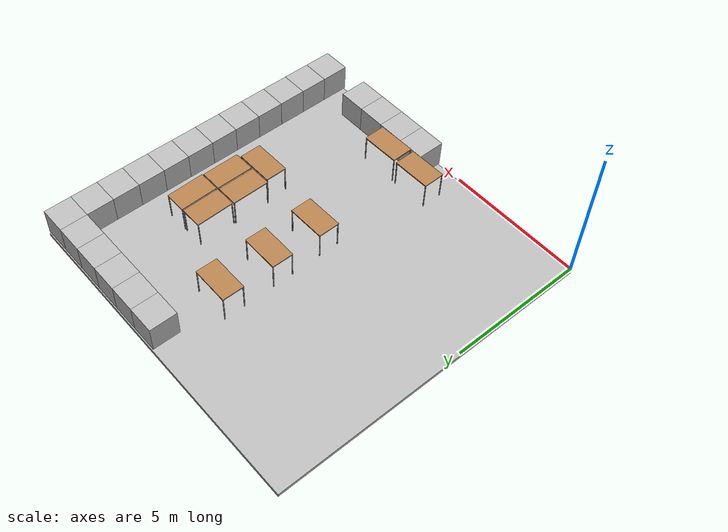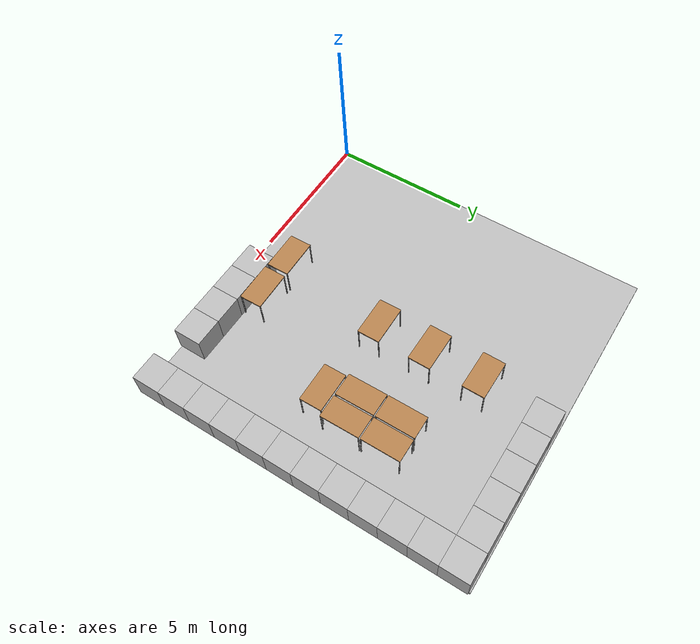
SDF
<sdf version="1.6">
 <world name="default">
  <model name="floor">
   <pose>5.93404 6.04423 -0.0625 0 -0 0</pose>
   <static>1</static>
   <link name="link">
    <collision name="collision"><geometry><box><size>12 12 0.125</size></box></geometry></collision>
    <visual name="visual"><geometry><box><size>12 12 0.125</size></box></geometry></visual>
   </link>
  </model>
  <model name="box_6_0">
   <pose>6.5 0.5 0.5 0 -0 0</pose>
   <static>1</static>
   <link name="link">
    <collision name="collision"><geometry><box><size>1 1 1</size></box></geometry></collision>
    <visual name="visual"><geometry><box><size>1 1 1</size></box></geometry></visual>
   </link>
  </model>
  <model name="box_6_11">
   <pose>6.5 11.5 0.5 0 -0 0</pose>
   <static>1</static>
   <link name="link">
    <collision name="collision"><geometry><box><size>1 1 1</size></box></geometry></collision>
    <visual name="visual"><geometry><box><size>1 1 1</size></box></geometry></visual>
   </link>
  </model>
  <model name="box_7_0">
   <pose>7.5 0.5 0.5 0 -0 0</pose>
   <static>1</static>
   <link name="link">
    <collision name="collision"><geometry><box><size>1 1 1</size></box></geometry></collision>
    <visual name="visual"><geometry><box><size>1 1 1</size></box></geometry></visual>
   </link>
  </model>
  <model name="box_7_11">
   <pose>7.5 11.5 0.5 0 -0 0</pose>
   <static>1</static>
   <link name="link">
    <collision name="collision"><geometry><box><size>1 1 1</size></box></geometry></collision>
    <visual name="visual"><geometry><box><size>1 1 1</size></box></geometry></visual>
   </link>
  </model>
  <model name="box_8_0">
   <pose>8.5 0.5 0.5 0 -0 0</pose>
   <static>1</static>
   <link name="link">
    <collision name="collision"><geometry><box><size>1 1 1</size></box></geometry></collision>
    <visual name="visual"><geometry><box><size>1 1 1</size></box></geometry></visual>
   </link>
  </model>
  <model name="box_8_11">
   <pose>8.5 11.5 0.5 0 -0 0</pose>
   <static>1</static>
   <link name="link">
    <collision name="collision"><geometry><box><size>1 1 1</size></box></geometry></collision>
    <visual name="visual"><geometry><box><size>1 1 1</size></box></geometry></visual>
   </link>
  </model>
  <model name="box_9_0">
   <pose>9.5 0.5 0.5 0 -0 0</pose>
   <static>1</static>
   <link name="link">
    <collision name="collision"><geometry><box><size>1 1 1</size></box></geometry></collision>
    <visual name="visual"><geometry><box><size>1 1 1</size></box></geometry></visual>
   </link>
  </model>
  <model name="box_9_11">
   <pose>9.5 11.5 0.5 0 -0 0</pose>
   <static>1</static>
   <link name="link">
    <collision name="collision"><geometry><box><size>1 1 1</size></box></geometry></collision>
    <visual name="visual"><geometry><box><size>1 1 1</size></box></geometry></visual>
   </link>
  </model>
  <model name="box_10_11">
   <pose>10.5 11.5 0.5 0 -0 0</pose>
   <static>1</static>
   <link name="link">
    <collision name="collision"><geometry><box><size>1 1 1</size></box></geometry></collision>
    <visual name="visual"><geometry><box><size>1 1 1</size></box></geometry></visual>
   </link>
  </model>
  <model name="box_11_0">
   <pose>11.5 0.5 0.5 0 -0 0</pose>
   <static>1</static>
   <link name="link">
    <collision name="collision"><geometry><box><size>1 1 1</size></box></geometry></collision>
    <visual name="visual"><geometry><box><size>1 1 1</size></box></geometry></visual>
   </link>
  </model>
  <model name="box_11_1">
   <pose>11.5 1.5 0.5 0 -0 0</pose>
   <static>1</static>
   <link name="link">
    <collision name="collision"><geometry><box><size>1 1 1</size></box></geometry></collision>
    <visual name="visual"><geometry><box><size>1 1 1</size></box></geometry></visual>
   </link>
  </model>
  <model name="box_11_2">
   <pose>11.5 2.5 0.5 0 -0 0</pose>
   <static>1</static>
   <link name="link">
    <collision name="collision"><geometry><box><size>1 1 1</size></box></geometry></collision>
    <visual name="visual"><geometry><box><size>1 1 1</size></box></geometry></visual>
   </link>
  </model>
  <model name="box_11_3">
   <pose>11.5 3.5 0.5 0 -0 0</pose>
   <static>1</static>
   <link name="link">
    <collision name="collision"><geometry><box><size>1 1 1</size></box></geometry></collision>
    <visual name="visual"><geometry><box><size>1 1 1</size></box></geometry></visual>
   </link>
  </model>
  <model name="box_11_4">
   <pose>11.5 4.5 0.5 0 -0 0</pose>
   <static>1</static>
   <link name="link">
    <collision name="collision"><geometry><box><size>1 1 1</size></box></geometry></collision>
    <visual name="visual"><geometry><box><size>1 1 1</size></box></geometry></visual>
   </link>
  </model>
  <model name="box_11_5">
   <pose>11.5 5.5 0.5 0 -0 0</pose>
   <static>1</static>
   <link name="link">
    <collision name="collision"><geometry><box><size>1 1 1</size></box></geometry></collision>
    <visual name="visual"><geometry><box><size>1 1 1</size></box></geometry></visual>
   </link>
  </model>
  <model name="box_11_6">
   <pose>11.5 6.5 0.5 0 -0 0</pose>
   <static>1</static>
   <link name="link">
    <collision name="collision"><geometry><box><size>1 1 1</size></box></geometry></collision>
    <visual name="visual"><geometry><box><size>1 1 1</size></box></geometry></visual>
   </link>
  </model>
  <model name="box_11_7">
   <pose>11.5 7.5 0.5 0 -0 0</pose>
   <static>1</static>
   <link name="link">
    <collision name="collision"><geometry><box><size>1 1 1</size></box></geometry></collision>
    <visual name="visual"><geometry><box><size>1 1 1</size></box></geometry></visual>
   </link>
  </model>
  <model name="box_11_8">
   <pose>11.5 8.5 0.5 0 -0 0</pose>
   <static>1</static>
   <link name="link">
    <collision name="collision"><geometry><box><size>1 1 1</size></box></geometry></collision>
    <visual name="visual"><geometry><box><size>1 1 1</size></box></geometry></visual>
   </link>
  </model>
  <model name="box_11_9">
   <pose>11.5 9.5 0.5 0 -0 0</pose>
   <static>1</static>
   <link name="link">
    <collision name="collision"><geometry><box><size>1 1 1</size></box></geometry></collision>
    <visual name="visual"><geometry><box><size>1 1 1</size></box></geometry></visual>
   </link>
  </model>
  <model name="box_11_10">
   <pose>11.5 10.5 0.5 0 -0 0</pose>
   <static>1</static>
   <link name="link">
    <collision name="collision"><geometry><box><size>1 1 1</size></box></geometry></collision>
    <visual name="visual"><geometry><box><size>1 1 1</size></box></geometry></visual>
   </link>
  </model>
  <model name="box_11_11">
   <pose>11.5 11.5 0.5 0 -0 0</pose>
   <static>1</static>
   <link name="link">
    <collision name="collision"><geometry><box><size>1 1 1</size></box></geometry></collision>
    <visual name="visual"><geometry><box><size>1 1 1</size></box></geometry></visual>
   </link>
  </model>
  <model name="table">
   <static>0</static>
   <link name="link">
    <collision name="surface">
     <pose>0 0 1 0 -0 0</pose>
     <geometry><box><size>1.5 0.8 0.03</size></box></geometry>
     <surface><friction><ode><mu>0.6</mu><mu2>0.6</mu2></ode></friction></surface>
    </collision>
    <visual name="visual1">
     <pose>0 0 1 0 -0 0</pose>
     <geometry><box><size>1.4 0.8 0.04</size></box></geometry>
     <material>
      <script><uri>file://media/materials/scripts/gazebo.material</uri><name>Gazebo/Wood</name></script>
     </material>
    </visual>
    <collision name="front_left_leg">
     <pose>0.68 0.38 0.5 0 -0 0</pose>
     <geometry><cylinder><radius>0.02</radius><length>1</length></cylinder></geometry>
    </collision>
    <visual name="front_left_leg">
     <pose>0.68 0.38 0.5 0 -0 0</pose>
     <geometry><cylinder><radius>0.02</radius><length>1</length></cylinder></geometry>
     <material>
      <script><uri>file://media/materials/scripts/gazebo.material</uri><name>Gazebo/Grey</name></script>
     </material>
    </visual>
    <collision name="front_right_leg">
     <pose>0.68 -0.38 0.5 0 -0 0</pose>
     <geometry><cylinder><radius>0.02</radius><length>1</length></cylinder></geometry>
    </collision>
    <visual name="front_right_leg">
     <pose>0.68 -0.38 0.5 0 -0 0</pose>
     <geometry><cylinder><radius>0.02</radius><length>1</length></cylinder></geometry>
     <material>
      <script><uri>file://media/materials/scripts/gazebo.material</uri><name>Gazebo/Grey</name></script>
     </material>
    </visual>
    <collision name="back_right_leg">
     <pose>-0.68 -0.38 0.5 0 -0 0</pose>
     <geometry><cylinder><radius>0.02</radius><length>1</length></cylinder></geometry>
    </collision>
    <visual name="back_right_leg">
     <pose>-0.68 -0.38 0.5 0 -0 0</pose>
     <geometry><cylinder><radius>0.02</radius><length>1</length></cylinder></geometry>
     <material>
      <script><uri>file://media/materials/scripts/gazebo.material</uri><name>Gazebo/Grey</name></script>
     </material>
    </visual>
    <collision name="back_left_leg">
     <pose>-0.68 0.38 0.5 0 -0 0</pose>
     <geometry><cylinder><radius>0.02</radius><length>1</length></cylinder></geometry>
    </collision>
    <visual name="back_left_leg">
     <pose>-0.68 0.38 0.5 0 -0 0</pose>
     <geometry><cylinder><radius>0.02</radius><length>1</length></cylinder></geometry>
     <material>
      <script><uri>file://media/materials/scripts/gazebo.material</uri><name>Gazebo/Grey</name></script>
     </material>
    </visual>
    <inertial>
     <inertia><ixx>1</ixx><ixy>0</ixy><ixz>0</ixz><iyy>1</iyy><iyz>0</iyz><izz>1</izz></inertia>
     <mass>1</mass>
    </inertial>
   </link>
   <pose>9.17863 5.23894 -3e-06 1e-06 -0 0.010782</pose>
  </model>
  <model name="table_0">
   <static>0</static>
   <link name="link">
    <collision name="surface">
     <pose>0 0 1 0 -0 0</pose>
     <geometry><box><size>1.5 0.8 0.03</size></box></geometry>
     <surface><friction><ode><mu>0.6</mu><mu2>0.6</mu2></ode></friction></surface>
    </collision>
    <visual name="visual1">
     <pose>0 0 1 0 -0 0</pose>
     <geometry><box><size>1.4 0.8 0.04</size></box></geometry>
     <material>
      <script><uri>file://media/materials/scripts/gazebo.material</uri><name>Gazebo/Wood</name></script>
     </material>
    </visual>
    <collision name="front_left_leg">
     <pose>0.68 0.38 0.5 0 -0 0</pose>
     <geometry><cylinder><radius>0.02</radius><length>1</length></cylinder></geometry>
    </collision>
    <visual name="front_left_leg">
     <pose>0.68 0.38 0.5 0 -0 0</pose>
     <geometry><cylinder><radius>0.02</radius><length>1</length></cylinder></geometry>
     <material>
      <script><uri>file://media/materials/scripts/gazebo.material</uri><name>Gazebo/Grey</name></script>
     </material>
    </visual>
    <collision name="front_right_leg">
     <pose>0.68 -0.38 0.5 0 -0 0</pose>
     <geometry><cylinder><radius>0.02</radius><length>1</length></cylinder></geometry>
    </collision>
    <visual name="front_right_leg">
     <pose>0.68 -0.38 0.5 0 -0 0</pose>
     <geometry><cylinder><radius>0.02</radius><length>1</length></cylinder></geometry>
     <material>
      <script><uri>file://media/materials/scripts/gazebo.material</uri><name>Gazebo/Grey</name></script>
     </material>
    </visual>
    <collision name="back_right_leg">
     <pose>-0.68 -0.38 0.5 0 -0 0</pose>
     <geometry><cylinder><radius>0.02</radius><length>1</length></cylinder></geometry>
    </collision>
    <visual name="back_right_leg">
     <pose>-0.68 -0.38 0.5 0 -0 0</pose>
     <geometry><cylinder><radius>0.02</radius><length>1</length></cylinder></geometry>
     <material>
      <script><uri>file://media/materials/scripts/gazebo.material</uri><name>Gazebo/Grey</name></script>
     </material>
    </visual>
    <collision name="back_left_leg">
     <pose>-0.68 0.38 0.5 0 -0 0</pose>
     <geometry><cylinder><radius>0.02</radius><length>1</length></cylinder></geometry>
    </collision>
    <visual name="back_left_leg">
     <pose>-0.68 0.38 0.5 0 -0 0</pose>
     <geometry><cylinder><radius>0.02</radius><length>1</length></cylinder></geometry>
     <material>
      <script><uri>file://media/materials/scripts/gazebo.material</uri><name>Gazebo/Grey</name></script>
     </material>
    </visual>
    <inertial>
     <inertia><ixx>1</ixx><ixy>0</ixy><ixz>0</ixz><iyy>1</iyy><iyz>0</iyz><izz>1</izz></inertia>
     <mass>1</mass>
    </inertial>
   </link>
   <pose>9.62619 6.39384 -0.000225 0 0 -1.56002</pose>
  </model>
  <model name="table_0_clone">
   <static>0</static>
   <link name="link">
    <collision name="surface">
     <pose>0 0 1 0 -0 0</pose>
     <geometry><box><size>1.5 0.8 0.03</size></box></geometry>
     <surface><friction><ode><mu>0.6</mu><mu2>0.6</mu2></ode></friction></surface>
    </collision>
    <visual name="visual1">
     <pose>0 0 1 0 -0 0</pose>
     <geometry><box><size>1.4 0.8 0.04</size></box></geometry>
     <material>
      <script><uri>file://media/materials/scripts/gazebo.material</uri><name>Gazebo/Wood</name></script>
     </material>
    </visual>
    <collision name="front_left_leg">
     <pose>0.68 0.38 0.5 0 -0 0</pose>
     <geometry><cylinder><radius>0.02</radius><length>1</length></cylinder></geometry>
    </collision>
    <visual name="front_left_leg">
     <pose>0.68 0.38 0.5 0 -0 0</pose>
     <geometry><cylinder><radius>0.02</radius><length>1</length></cylinder></geometry>
     <material>
      <script><uri>file://media/materials/scripts/gazebo.material</uri><name>Gazebo/Grey</name></script>
     </material>
    </visual>
    <collision name="front_right_leg">
     <pose>0.68 -0.38 0.5 0 -0 0</pose>
     <geometry><cylinder><radius>0.02</radius><length>1</length></cylinder></geometry>
    </collision>
    <visual name="front_right_leg">
     <pose>0.68 -0.38 0.5 0 -0 0</pose>
     <geometry><cylinder><radius>0.02</radius><length>1</length></cylinder></geometry>
     <material>
      <script><uri>file://media/materials/scripts/gazebo.material</uri><name>Gazebo/Grey</name></script>
     </material>
    </visual>
    <collision name="back_right_leg">
     <pose>-0.68 -0.38 0.5 0 -0 0</pose>
     <geometry><cylinder><radius>0.02</radius><length>1</length></cylinder></geometry>
    </collision>
    <visual name="back_right_leg">
     <pose>-0.68 -0.38 0.5 0 -0 0</pose>
     <geometry><cylinder><radius>0.02</radius><length>1</length></cylinder></geometry>
     <material>
      <script><uri>file://media/materials/scripts/gazebo.material</uri><name>Gazebo/Grey</name></script>
     </material>
    </visual>
    <collision name="back_left_leg">
     <pose>-0.68 0.38 0.5 0 -0 0</pose>
     <geometry><cylinder><radius>0.02</radius><length>1</length></cylinder></geometry>
    </collision>
    <visual name="back_left_leg">
     <pose>-0.68 0.38 0.5 0 -0 0</pose>
     <geometry><cylinder><radius>0.02</radius><length>1</length></cylinder></geometry>
     <material>
      <script><uri>file://media/materials/scripts/gazebo.material</uri><name>Gazebo/Grey</name></script>
     </material>
    </visual>
    <inertial>
     <inertia><ixx>1</ixx><ixy>0</ixy><ixz>0</ixz><iyy>1</iyy><iyz>0</iyz><izz>1</izz></inertia>
     <mass>1</mass>
    </inertial>
   </link>
   <pose>8.76766 6.38458 -2e-06 0 -3e-06 -1.56002</pose>
  </model>
  <model name="table_0_clone_clone">
   <static>0</static>
   <link name="link">
    <collision name="surface">
     <pose>0 0 1 0 -0 0</pose>
     <geometry><box><size>1.5 0.8 0.03</size></box></geometry>
     <surface><friction><ode><mu>0.6</mu><mu2>0.6</mu2></ode></friction></surface>
    </collision>
    <visual name="visual1">
     <pose>0 0 1 0 -0 0</pose>
     <geometry><box><size>1.4 0.8 0.04</size></box></geometry>
     <material>
      <script><uri>file://media/materials/scripts/gazebo.material</uri><name>Gazebo/Wood</name></script>
     </material>
    </visual>
    <collision name="front_left_leg">
     <pose>0.68 0.38 0.5 0 -0 0</pose>
     <geometry><cylinder><radius>0.02</radius><length>1</length></cylinder></geometry>
    </collision>
    <visual name="front_left_leg">
     <pose>0.68 0.38 0.5 0 -0 0</pose>
     <geometry><cylinder><radius>0.02</radius><length>1</length></cylinder></geometry>
     <material>
      <script><uri>file://media/materials/scripts/gazebo.material</uri><name>Gazebo/Grey</name></script>
     </material>
    </visual>
    <collision name="front_right_leg">
     <pose>0.68 -0.38 0.5 0 -0 0</pose>
     <geometry><cylinder><radius>0.02</radius><length>1</length></cylinder></geometry>
    </collision>
    <visual name="front_right_leg">
     <pose>0.68 -0.38 0.5 0 -0 0</pose>
     <geometry><cylinder><radius>0.02</radius><length>1</length></cylinder></geometry>
     <material>
      <script><uri>file://media/materials/scripts/gazebo.material</uri><name>Gazebo/Grey</name></script>
     </material>
    </visual>
    <collision name="back_right_leg">
     <pose>-0.68 -0.38 0.5 0 -0 0</pose>
     <geometry><cylinder><radius>0.02</radius><length>1</length></cylinder></geometry>
    </collision>
    <visual name="back_right_leg">
     <pose>-0.68 -0.38 0.5 0 -0 0</pose>
     <geometry><cylinder><radius>0.02</radius><length>1</length></cylinder></geometry>
     <material>
      <script><uri>file://media/materials/scripts/gazebo.material</uri><name>Gazebo/Grey</name></script>
     </material>
    </visual>
    <collision name="back_left_leg">
     <pose>-0.68 0.38 0.5 0 -0 0</pose>
     <geometry><cylinder><radius>0.02</radius><length>1</length></cylinder></geometry>
    </collision>
    <visual name="back_left_leg">
     <pose>-0.68 0.38 0.5 0 -0 0</pose>
     <geometry><cylinder><radius>0.02</radius><length>1</length></cylinder></geometry>
     <material>
      <script><uri>file://media/materials/scripts/gazebo.material</uri><name>Gazebo/Grey</name></script>
     </material>
    </visual>
    <inertial>
     <inertia><ixx>1</ixx><ixy>0</ixy><ixz>0</ixz><iyy>1</iyy><iyz>0</iyz><izz>1</izz></inertia>
     <mass>1</mass>
    </inertial>
   </link>
   <pose>9.61728 7.82305 0.015111 5e-06 -0.021582 -1.56002</pose>
  </model>
  <model name="table_0_clone_clone_0">
   <static>0</static>
   <link name="link">
    <collision name="surface">
     <pose>0 0 1 0 -0 0</pose>
     <geometry><box><size>1.5 0.8 0.03</size></box></geometry>
     <surface><friction><ode><mu>0.6</mu><mu2>0.6</mu2></ode></friction></surface>
    </collision>
    <visual name="visual1">
     <pose>0 0 1 0 -0 0</pose>
     <geometry><box><size>1.4 0.8 0.04</size></box></geometry>
     <material>
      <script><uri>file://media/materials/scripts/gazebo.material</uri><name>Gazebo/Wood</name></script>
     </material>
    </visual>
    <collision name="front_left_leg">
     <pose>0.68 0.38 0.5 0 -0 0</pose>
     <geometry><cylinder><radius>0.02</radius><length>1</length></cylinder></geometry>
    </collision>
    <visual name="front_left_leg">
     <pose>0.68 0.38 0.5 0 -0 0</pose>
     <geometry><cylinder><radius>0.02</radius><length>1</length></cylinder></geometry>
     <material>
      <script><uri>file://media/materials/scripts/gazebo.material</uri><name>Gazebo/Grey</name></script>
     </material>
    </visual>
    <collision name="front_right_leg">
     <pose>0.68 -0.38 0.5 0 -0 0</pose>
     <geometry><cylinder><radius>0.02</radius><length>1</length></cylinder></geometry>
    </collision>
    <visual name="front_right_leg">
     <pose>0.68 -0.38 0.5 0 -0 0</pose>
     <geometry><cylinder><radius>0.02</radius><length>1</length></cylinder></geometry>
     <material>
      <script><uri>file://media/materials/scripts/gazebo.material</uri><name>Gazebo/Grey</name></script>
     </material>
    </visual>
    <collision name="back_right_leg">
     <pose>-0.68 -0.38 0.5 0 -0 0</pose>
     <geometry><cylinder><radius>0.02</radius><length>1</length></cylinder></geometry>
    </collision>
    <visual name="back_right_leg">
     <pose>-0.68 -0.38 0.5 0 -0 0</pose>
     <geometry><cylinder><radius>0.02</radius><length>1</length></cylinder></geometry>
     <material>
      <script><uri>file://media/materials/scripts/gazebo.material</uri><name>Gazebo/Grey</name></script>
     </material>
    </visual>
    <collision name="back_left_leg">
     <pose>-0.68 0.38 0.5 0 -0 0</pose>
     <geometry><cylinder><radius>0.02</radius><length>1</length></cylinder></geometry>
    </collision>
    <visual name="back_left_leg">
     <pose>-0.68 0.38 0.5 0 -0 0</pose>
     <geometry><cylinder><radius>0.02</radius><length>1</length></cylinder></geometry>
     <material>
      <script><uri>file://media/materials/scripts/gazebo.material</uri><name>Gazebo/Grey</name></script>
     </material>
    </visual>
    <inertial>
     <inertia><ixx>1</ixx><ixy>0</ixy><ixz>0</ixz><iyy>1</iyy><iyz>0</iyz><izz>1</izz></inertia>
     <mass>1</mass>
    </inertial>
   </link>
   <pose>8.76249 7.81384 0.015106 0 -0.021582 -1.56002</pose>
  </model>
  <model name="table_clone">
   <static>0</static>
   <link name="link">
    <collision name="surface">
     <pose>0 0 1 0 -0 0</pose>
     <geometry><box><size>1.5 0.8 0.03</size></box></geometry>
     <surface><friction><ode><mu>0.6</mu><mu2>0.6</mu2></ode></friction></surface>
    </collision>
    <visual name="visual1">
     <pose>0 0 1 0 -0 0</pose>
     <geometry><box><size>1.4 0.8 0.04</size></box></geometry>
     <material>
      <script><uri>file://media/materials/scripts/gazebo.material</uri><name>Gazebo/Wood</name></script>
     </material>
    </visual>
    <collision name="front_left_leg">
     <pose>0.68 0.38 0.5 0 -0 0</pose>
     <geometry><cylinder><radius>0.02</radius><length>1</length></cylinder></geometry>
    </collision>
    <visual name="front_left_leg">
     <pose>0.68 0.38 0.5 0 -0 0</pose>
     <geometry><cylinder><radius>0.02</radius><length>1</length></cylinder></geometry>
     <material>
      <script><uri>file://media/materials/scripts/gazebo.material</uri><name>Gazebo/Grey</name></script>
     </material>
    </visual>
    <collision name="front_right_leg">
     <pose>0.68 -0.38 0.5 0 -0 0</pose>
     <geometry><cylinder><radius>0.02</radius><length>1</length></cylinder></geometry>
    </collision>
    <visual name="front_right_leg">
     <pose>0.68 -0.38 0.5 0 -0 0</pose>
     <geometry><cylinder><radius>0.02</radius><length>1</length></cylinder></geometry>
     <material>
      <script><uri>file://media/materials/scripts/gazebo.material</uri><name>Gazebo/Grey</name></script>
     </material>
    </visual>
    <collision name="back_right_leg">
     <pose>-0.68 -0.38 0.5 0 -0 0</pose>
     <geometry><cylinder><radius>0.02</radius><length>1</length></cylinder></geometry>
    </collision>
    <visual name="back_right_leg">
     <pose>-0.68 -0.38 0.5 0 -0 0</pose>
     <geometry><cylinder><radius>0.02</radius><length>1</length></cylinder></geometry>
     <material>
      <script><uri>file://media/materials/scripts/gazebo.material</uri><name>Gazebo/Grey</name></script>
     </material>
    </visual>
    <collision name="back_left_leg">
     <pose>-0.68 0.38 0.5 0 -0 0</pose>
     <geometry><cylinder><radius>0.02</radius><length>1</length></cylinder></geometry>
    </collision>
    <visual name="back_left_leg">
     <pose>-0.68 0.38 0.5 0 -0 0</pose>
     <geometry><cylinder><radius>0.02</radius><length>1</length></cylinder></geometry>
     <material>
      <script><uri>file://media/materials/scripts/gazebo.material</uri><name>Gazebo/Grey</name></script>
     </material>
    </visual>
    <inertial>
     <inertia><ixx>1</ixx><ixy>0</ixy><ixz>0</ixz><iyy>1</iyy><iyz>0</iyz><izz>1</izz></inertia>
     <mass>1</mass>
    </inertial>
   </link>
   <pose>6.23597 5.44554 0 0 -0 0.012441</pose>
  </model>
  <model name="table_clone_0_clone_0">
   <static>0</static>
   <link name="link">
    <collision name="surface">
     <pose>0 0 1 0 -0 0</pose>
     <geometry><box><size>1.5 0.8 0.03</size></box></geometry>
     <surface><friction><ode><mu>0.6</mu><mu2>0.6</mu2></ode></friction></surface>
    </collision>
    <visual name="visual1">
     <pose>0 0 1 0 -0 0</pose>
     <geometry><box><size>1.4 0.8 0.04</size></box></geometry>
     <material>
      <script><uri>file://media/materials/scripts/gazebo.material</uri><name>Gazebo/Wood</name></script>
     </material>
    </visual>
    <collision name="front_left_leg">
     <pose>0.68 0.38 0.5 0 -0 0</pose>
     <geometry><cylinder><radius>0.02</radius><length>1</length></cylinder></geometry>
    </collision>
    <visual name="front_left_leg">
     <pose>0.68 0.38 0.5 0 -0 0</pose>
     <geometry><cylinder><radius>0.02</radius><length>1</length></cylinder></geometry>
     <material>
      <script><uri>file://media/materials/scripts/gazebo.material</uri><name>Gazebo/Grey</name></script>
     </material>
    </visual>
    <collision name="front_right_leg">
     <pose>0.68 -0.38 0.5 0 -0 0</pose>
     <geometry><cylinder><radius>0.02</radius><length>1</length></cylinder></geometry>
    </collision>
    <visual name="front_right_leg">
     <pose>0.68 -0.38 0.5 0 -0 0</pose>
     <geometry><cylinder><radius>0.02</radius><length>1</length></cylinder></geometry>
     <material>
      <script><uri>file://media/materials/scripts/gazebo.material</uri><name>Gazebo/Grey</name></script>
     </material>
    </visual>
    <collision name="back_right_leg">
     <pose>-0.68 -0.38 0.5 0 -0 0</pose>
     <geometry><cylinder><radius>0.02</radius><length>1</length></cylinder></geometry>
    </collision>
    <visual name="back_right_leg">
     <pose>-0.68 -0.38 0.5 0 -0 0</pose>
     <geometry><cylinder><radius>0.02</radius><length>1</length></cylinder></geometry>
     <material>
      <script><uri>file://media/materials/scripts/gazebo.material</uri><name>Gazebo/Grey</name></script>
     </material>
    </visual>
    <collision name="back_left_leg">
     <pose>-0.68 0.38 0.5 0 -0 0</pose>
     <geometry><cylinder><radius>0.02</radius><length>1</length></cylinder></geometry>
    </collision>
    <visual name="back_left_leg">
     <pose>-0.68 0.38 0.5 0 -0 0</pose>
     <geometry><cylinder><radius>0.02</radius><length>1</length></cylinder></geometry>
     <material>
      <script><uri>file://media/materials/scripts/gazebo.material</uri><name>Gazebo/Grey</name></script>
     </material>
    </visual>
    <inertial>
     <inertia><ixx>1</ixx><ixy>0</ixy><ixz>0</ixz><iyy>1</iyy><iyz>0</iyz><izz>1</izz></inertia>
     <mass>1</mass>
    </inertial>
   </link>
   <pose>6.21494 7.34049 -8e-06 0 0 -0.005891</pose>
  </model>
  <model name="table_clone_0_clone_2">
   <static>0</static>
   <link name="link">
    <collision name="surface">
     <pose>0 0 1 0 -0 0</pose>
     <geometry><box><size>1.5 0.8 0.03</size></box></geometry>
     <surface><friction><ode><mu>0.6</mu><mu2>0.6</mu2></ode></friction></surface>
    </collision>
    <visual name="visual1">
     <pose>0 0 1 0 -0 0</pose>
     <geometry><box><size>1.4 0.8 0.04</size></box></geometry>
     <material>
      <script><uri>file://media/materials/scripts/gazebo.material</uri><name>Gazebo/Wood</name></script>
     </material>
    </visual>
    <collision name="front_left_leg">
     <pose>0.68 0.38 0.5 0 -0 0</pose>
     <geometry><cylinder><radius>0.02</radius><length>1</length></cylinder></geometry>
    </collision>
    <visual name="front_left_leg">
     <pose>0.68 0.38 0.5 0 -0 0</pose>
     <geometry><cylinder><radius>0.02</radius><length>1</length></cylinder></geometry>
     <material>
      <script><uri>file://media/materials/scripts/gazebo.material</uri><name>Gazebo/Grey</name></script>
     </material>
    </visual>
    <collision name="front_right_leg">
     <pose>0.68 -0.38 0.5 0 -0 0</pose>
     <geometry><cylinder><radius>0.02</radius><length>1</length></cylinder></geometry>
    </collision>
    <visual name="front_right_leg">
     <pose>0.68 -0.38 0.5 0 -0 0</pose>
     <geometry><cylinder><radius>0.02</radius><length>1</length></cylinder></geometry>
     <material>
      <script><uri>file://media/materials/scripts/gazebo.material</uri><name>Gazebo/Grey</name></script>
     </material>
    </visual>
    <collision name="back_right_leg">
     <pose>-0.68 -0.38 0.5 0 -0 0</pose>
     <geometry><cylinder><radius>0.02</radius><length>1</length></cylinder></geometry>
    </collision>
    <visual name="back_right_leg">
     <pose>-0.68 -0.38 0.5 0 -0 0</pose>
     <geometry><cylinder><radius>0.02</radius><length>1</length></cylinder></geometry>
     <material>
      <script><uri>file://media/materials/scripts/gazebo.material</uri><name>Gazebo/Grey</name></script>
     </material>
    </visual>
    <collision name="back_left_leg">
     <pose>-0.68 0.38 0.5 0 -0 0</pose>
     <geometry><cylinder><radius>0.02</radius><length>1</length></cylinder></geometry>
    </collision>
    <visual name="back_left_leg">
     <pose>-0.68 0.38 0.5 0 -0 0</pose>
     <geometry><cylinder><radius>0.02</radius><length>1</length></cylinder></geometry>
     <material>
      <script><uri>file://media/materials/scripts/gazebo.material</uri><name>Gazebo/Grey</name></script>
     </material>
    </visual>
    <inertial>
     <inertia><ixx>1</ixx><ixy>0</ixy><ixz>0</ixz><iyy>1</iyy><iyz>0</iyz><izz>1</izz></inertia>
     <mass>1</mass>
    </inertial>
   </link>
   <pose>6.1956 9.27717 -1e-06 0 -1e-06 -0.006092</pose>
  </model>
  <model name="table_clone_0_clone_clone_1">
   <static>0</static>
   <link name="link">
    <collision name="surface">
     <pose>0 0 1 0 -0 0</pose>
     <geometry><box><size>1.5 0.8 0.03</size></box></geometry>
     <surface><friction><ode><mu>0.6</mu><mu2>0.6</mu2></ode></friction></surface>
    </collision>
    <visual name="visual1">
     <pose>0 0 1 0 -0 0</pose>
     <geometry><box><size>1.4 0.8 0.04</size></box></geometry>
     <material>
      <script><uri>file://media/materials/scripts/gazebo.material</uri><name>Gazebo/Wood</name></script>
     </material>
    </visual>
    <collision name="front_left_leg">
     <pose>0.68 0.38 0.5 0 -0 0</pose>
     <geometry><cylinder><radius>0.02</radius><length>1</length></cylinder></geometry>
    </collision>
    <visual name="front_left_leg">
     <pose>0.68 0.38 0.5 0 -0 0</pose>
     <geometry><cylinder><radius>0.02</radius><length>1</length></cylinder></geometry>
     <material>
      <script><uri>file://media/materials/scripts/gazebo.material</uri><name>Gazebo/Grey</name></script>
     </material>
    </visual>
    <collision name="front_right_leg">
     <pose>0.68 -0.38 0.5 0 -0 0</pose>
     <geometry><cylinder><radius>0.02</radius><length>1</length></cylinder></geometry>
    </collision>
    <visual name="front_right_leg">
     <pose>0.68 -0.38 0.5 0 -0 0</pose>
     <geometry><cylinder><radius>0.02</radius><length>1</length></cylinder></geometry>
     <material>
      <script><uri>file://media/materials/scripts/gazebo.material</uri><name>Gazebo/Grey</name></script>
     </material>
    </visual>
    <collision name="back_right_leg">
     <pose>-0.68 -0.38 0.5 0 -0 0</pose>
     <geometry><cylinder><radius>0.02</radius><length>1</length></cylinder></geometry>
    </collision>
    <visual name="back_right_leg">
     <pose>-0.68 -0.38 0.5 0 -0 0</pose>
     <geometry><cylinder><radius>0.02</radius><length>1</length></cylinder></geometry>
     <material>
      <script><uri>file://media/materials/scripts/gazebo.material</uri><name>Gazebo/Grey</name></script>
     </material>
    </visual>
    <collision name="back_left_leg">
     <pose>-0.68 0.38 0.5 0 -0 0</pose>
     <geometry><cylinder><radius>0.02</radius><length>1</length></cylinder></geometry>
    </collision>
    <visual name="back_left_leg">
     <pose>-0.68 0.38 0.5 0 -0 0</pose>
     <geometry><cylinder><radius>0.02</radius><length>1</length></cylinder></geometry>
     <material>
      <script><uri>file://media/materials/scripts/gazebo.material</uri><name>Gazebo/Grey</name></script>
     </material>
    </visual>
    <inertial>
     <inertia><ixx>1</ixx><ixy>0</ixy><ixz>0</ixz><iyy>1</iyy><iyz>0</iyz><izz>1</izz></inertia>
     <mass>1</mass>
    </inertial>
   </link>
   <pose>5.62851 1.4111 -2.5e-05 1e-06 7e-06 0.014867</pose>
  </model>
  <model name="table_clone_0_clone_clone_2">
   <static>0</static>
   <link name="link">
    <collision name="surface">
     <pose>0 0 1 0 -0 0</pose>
     <geometry><box><size>1.5 0.8 0.03</size></box></geometry>
     <surface><friction><ode><mu>0.6</mu><mu2>0.6</mu2></ode></friction></surface>
    </collision>
    <visual name="visual1">
     <pose>0 0 1 0 -0 0</pose>
     <geometry><box><size>1.4 0.8 0.04</size></box></geometry>
     <material>
      <script><uri>file://media/materials/scripts/gazebo.material</uri><name>Gazebo/Wood</name></script>
     </material>
    </visual>
    <collision name="front_left_leg">
     <pose>0.68 0.38 0.5 0 -0 0</pose>
     <geometry><cylinder><radius>0.02</radius><length>1</length></cylinder></geometry>
    </collision>
    <visual name="front_left_leg">
     <pose>0.68 0.38 0.5 0 -0 0</pose>
     <geometry><cylinder><radius>0.02</radius><length>1</length></cylinder></geometry>
     <material>
      <script><uri>file://media/materials/scripts/gazebo.material</uri><name>Gazebo/Grey</name></script>
     </material>
    </visual>
    <collision name="front_right_leg">
     <pose>0.68 -0.38 0.5 0 -0 0</pose>
     <geometry><cylinder><radius>0.02</radius><length>1</length></cylinder></geometry>
    </collision>
    <visual name="front_right_leg">
     <pose>0.68 -0.38 0.5 0 -0 0</pose>
     <geometry><cylinder><radius>0.02</radius><length>1</length></cylinder></geometry>
     <material>
      <script><uri>file://media/materials/scripts/gazebo.material</uri><name>Gazebo/Grey</name></script>
     </material>
    </visual>
    <collision name="back_right_leg">
     <pose>-0.68 -0.38 0.5 0 -0 0</pose>
     <geometry><cylinder><radius>0.02</radius><length>1</length></cylinder></geometry>
    </collision>
    <visual name="back_right_leg">
     <pose>-0.68 -0.38 0.5 0 -0 0</pose>
     <geometry><cylinder><radius>0.02</radius><length>1</length></cylinder></geometry>
     <material>
      <script><uri>file://media/materials/scripts/gazebo.material</uri><name>Gazebo/Grey</name></script>
     </material>
    </visual>
    <collision name="back_left_leg">
     <pose>-0.68 0.38 0.5 0 -0 0</pose>
     <geometry><cylinder><radius>0.02</radius><length>1</length></cylinder></geometry>
    </collision>
    <visual name="back_left_leg">
     <pose>-0.68 0.38 0.5 0 -0 0</pose>
     <geometry><cylinder><radius>0.02</radius><length>1</length></cylinder></geometry>
     <material>
      <script><uri>file://media/materials/scripts/gazebo.material</uri><name>Gazebo/Grey</name></script>
     </material>
    </visual>
    <inertial>
     <inertia><ixx>1</ixx><ixy>0</ixy><ixz>0</ixz><iyy>1</iyy><iyz>0</iyz><izz>1</izz></inertia>
     <mass>1</mass>
    </inertial>
   </link>
   <pose>7.14978 1.4174 0 0 -0 0.016887</pose>
  </model>
 </world>
</sdf>
